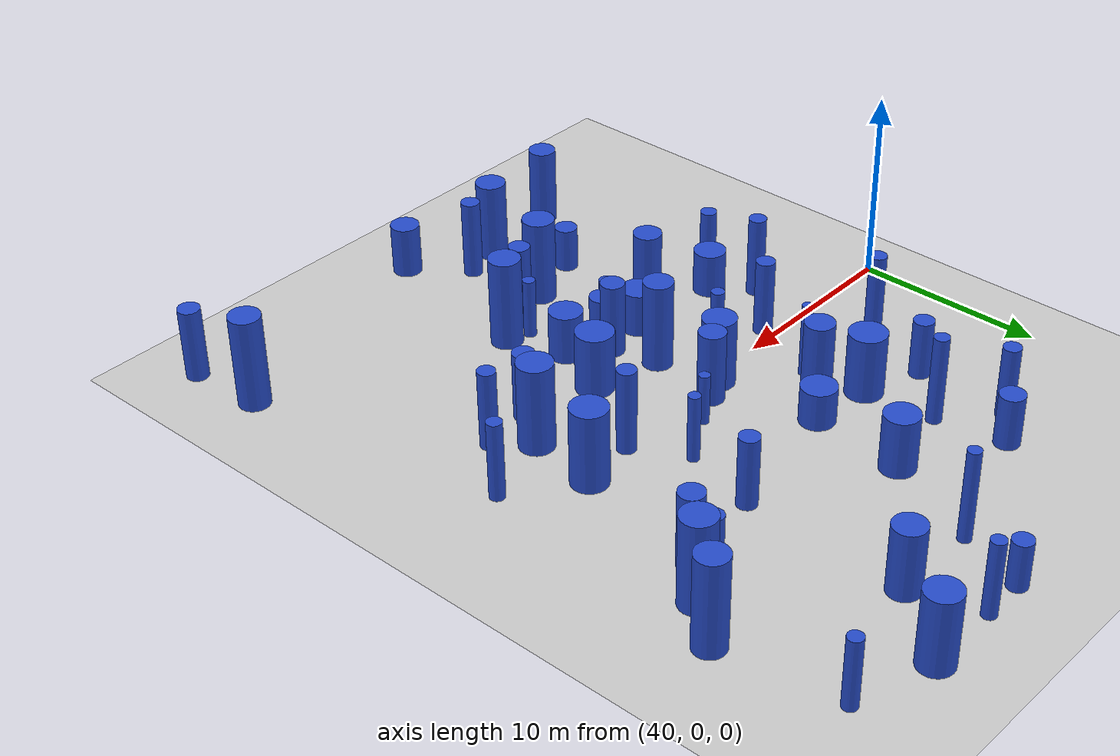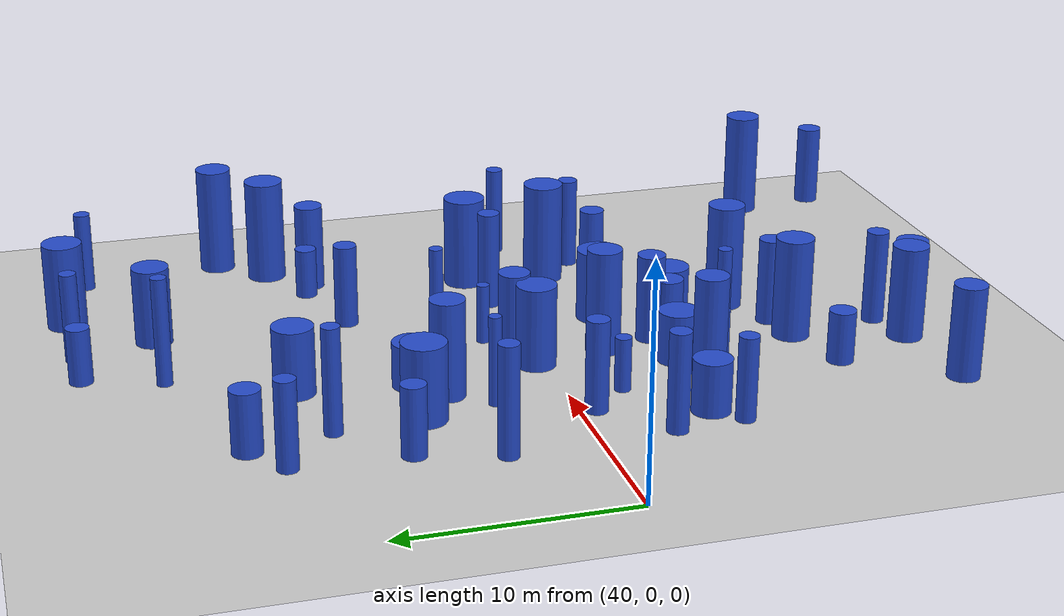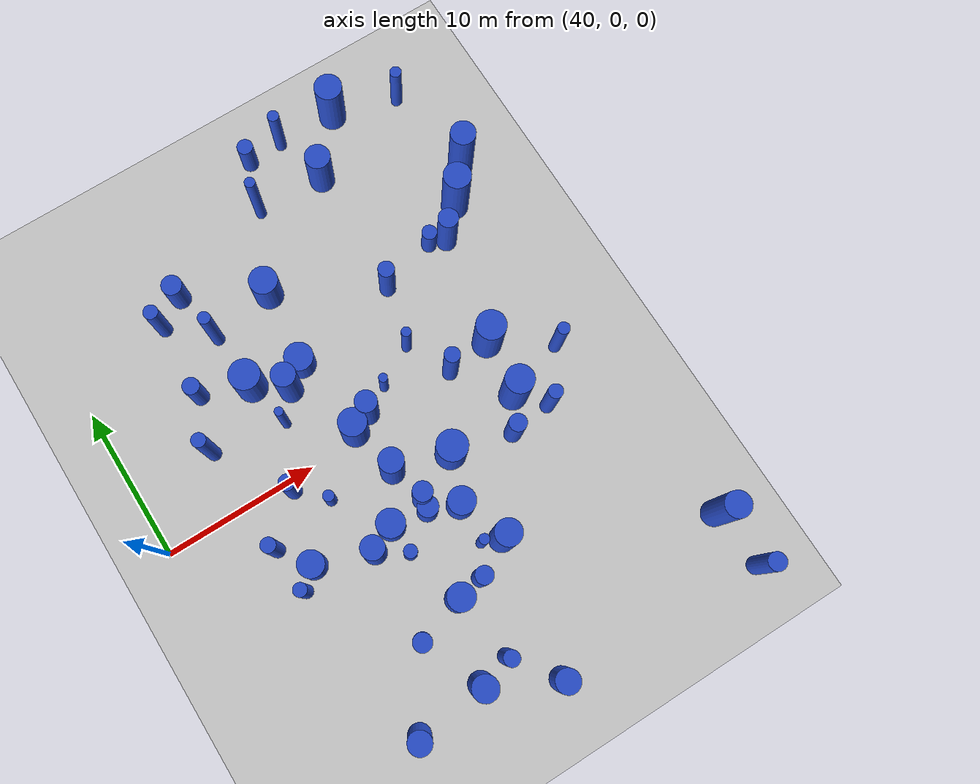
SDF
<sdf version="1.7">
 <world name="default">
  <model name="ground_plane">
   <static>1</static>
   <link name="link">
    <collision name="collision">
     <geometry><plane><normal>0 0 1</normal><size>100 100</size></plane></geometry>
     <surface>
      <contact><collide_bitmask>65535</collide_bitmask></contact>
      <friction><ode><mu>100</mu><mu2>50</mu2></ode></friction>
     </surface>
    </collision>
    <visual name="visual">
     <cast_shadows>0</cast_shadows>
     <geometry><plane><normal>0 0 1</normal><size>100 100</size></plane></geometry>
     <material>
      <script><uri>file://media/materials/scripts/gazebo.material</uri><name>Gazebo/Grey</name></script>
     </material>
    </visual>
   </link>
  </model>
  <model name="1">
   <static>0</static>
   <link name="link">
    <inertial>
     <mass>2</mass>
     <inertia><ixx>3.81588</ixx><ixy>0</ixy><ixz>0</ixz><iyy>3.81588</iyy><iyz>0</iyz><izz>0.158534</izz></inertia>
    </inertial>
    <collision name="collision">
     <geometry><cylinder><length>4.73494</length><radius>0.398164</radius></cylinder></geometry>
     <surface><contact><collide_without_contact>1</collide_without_contact></contact></surface>
    </collision>
    <visual name="visual">
     <geometry><cylinder><length>4.73494</length><radius>0.398164</radius></cylinder></geometry>
     <material>
      <script><uri>file://media/materials/scripts/gazebo.material</uri><name>Gazebo/Blue</name></script>
     </material>
    </visual>
    <gravity>0</gravity>
   </link>
   <pose>49.1407 10.17 2.36747 0 -0 0</pose>
  </model>
  <model name="5">
   <static>0</static>
   <link name="link">
    <inertial>
     <mass>2</mass>
     <inertia><ixx>0.79305</ixx><ixy>0</ixy><ixz>0</ixz><iyy>0.79305</iyy><iyz>0</iyz><izz>0.186767</izz></inertia>
    </inertial>
    <collision name="collision">
     <geometry><cylinder><length>2.0489</length><radius>0.432165</radius></cylinder></geometry>
     <surface><contact><collide_without_contact>1</collide_without_contact></contact></surface>
    </collision>
    <visual name="visual">
     <geometry><cylinder><length>2.0489</length><radius>0.432165</radius></cylinder></geometry>
     <material>
      <script><uri>file://media/materials/scripts/gazebo.material</uri><name>Gazebo/Blue</name></script>
     </material>
    </visual>
    <gravity>0</gravity>
   </link>
   <pose>52.3759 -7.64916 1.02445 0 -0 0</pose>
  </model>
  <model name="9">
   <static>0</static>
   <link name="link">
    <inertial>
     <mass>2</mass>
     <inertia><ixx>2.49906</ixx><ixy>0</ixy><ixz>0</ixz><iyy>2.49906</iyy><iyz>0</iyz><izz>0.95958</izz></inertia>
    </inertial>
    <collision name="collision">
     <geometry><cylinder><length>3.48075</length><radius>0.979581</radius></cylinder></geometry>
     <surface><contact><collide_without_contact>1</collide_without_contact></contact></surface>
    </collision>
    <visual name="visual">
     <geometry><cylinder><length>3.48075</length><radius>0.979581</radius></cylinder></geometry>
     <material>
      <script><uri>file://media/materials/scripts/gazebo.material</uri><name>Gazebo/Blue</name></script>
     </material>
    </visual>
    <gravity>0</gravity>
   </link>
   <pose>49.4222 6.32651 1.74037 0 -0 0</pose>
  </model>
  <model name="10">
   <static>0</static>
   <link name="link">
    <inertial>
     <mass>2</mass>
     <inertia><ixx>2.47867</ixx><ixy>0</ixy><ixz>0</ixz><iyy>2.47867</iyy><iyz>0</iyz><izz>0.684649</izz></inertia>
    </inertial>
    <collision name="collision">
     <geometry><cylinder><length>3.58024</length><radius>0.827435</radius></cylinder></geometry>
     <surface><contact><collide_without_contact>1</collide_without_contact></contact></surface>
    </collision>
    <visual name="visual">
     <geometry><cylinder><length>3.58024</length><radius>0.827435</radius></cylinder></geometry>
     <material>
      <script><uri>file://media/materials/scripts/gazebo.material</uri><name>Gazebo/Blue</name></script>
     </material>
    </visual>
    <gravity>0</gravity>
   </link>
   <pose>60.2377 16.0206 1.79012 0 -0 0</pose>
  </model>
  <model name="16">
   <static>0</static>
   <link name="link">
    <inertial>
     <mass>2</mass>
     <inertia><ixx>1.52106</ixx><ixy>0</ixy><ixz>0</ixz><iyy>1.52106</iyy><iyz>0</iyz><izz>0.42879</izz></inertia>
    </inertial>
    <collision name="collision">
     <geometry><cylinder><length>2.8</length><radius>0.65482</radius></cylinder></geometry>
     <surface><contact><collide_without_contact>1</collide_without_contact></contact></surface>
    </collision>
    <visual name="visual">
     <geometry><cylinder><length>2.8</length><radius>0.65482</radius></cylinder></geometry>
     <material>
      <script><uri>file://media/materials/scripts/gazebo.material</uri><name>Gazebo/Blue</name></script>
     </material>
    </visual>
    <gravity>0</gravity>
   </link>
   <pose>48.4224 13.7686 1.4 0 -0 0</pose>
  </model>
  <model name="20">
   <static>0</static>
   <link name="link">
    <inertial>
     <mass>2</mass>
     <inertia><ixx>2.82224</ixx><ixy>0</ixy><ixz>0</ixz><iyy>2.82224</iyy><iyz>0</iyz><izz>0.140236</izz></inertia>
    </inertial>
    <collision name="collision">
     <geometry><cylinder><length>4.06358</length><radius>0.374481</radius></cylinder></geometry>
     <surface><contact><collide_without_contact>1</collide_without_contact></contact></surface>
    </collision>
    <visual name="visual">
     <geometry><cylinder><length>4.06358</length><radius>0.374481</radius></cylinder></geometry>
     <material>
      <script><uri>file://media/materials/scripts/gazebo.material</uri><name>Gazebo/Blue</name></script>
     </material>
    </visual>
    <gravity>0</gravity>
   </link>
   <pose>59.2068 19.6094 2.03179 0 -0 0</pose>
  </model>
  <model name="21">
   <static>0</static>
   <link name="link">
    <inertial>
     <mass>2</mass>
     <inertia><ixx>3.48031</ixx><ixy>0</ixy><ixz>0</ixz><iyy>3.48031</iyy><iyz>0</iyz><izz>0.247758</izz></inertia>
    </inertial>
    <collision name="collision">
     <geometry><cylinder><length>4.4876</length><radius>0.497753</radius></cylinder></geometry>
     <surface><contact><collide_without_contact>1</collide_without_contact></contact></surface>
    </collision>
    <visual name="visual">
     <geometry><cylinder><length>4.4876</length><radius>0.497753</radius></cylinder></geometry>
     <material>
      <script><uri>file://media/materials/scripts/gazebo.material</uri><name>Gazebo/Blue</name></script>
     </material>
    </visual>
    <gravity>0</gravity>
   </link>
   <pose>60.4035 0.607135 2.2438 0 -0 0</pose>
  </model>
  <model name="23">
   <static>0</static>
   <link name="link">
    <inertial>
     <mass>2</mass>
     <inertia><ixx>3.02897</ixx><ixy>0</ixy><ixz>0</ixz><iyy>3.02897</iyy><iyz>0</iyz><izz>0.799249</izz></inertia>
    </inertial>
    <collision name="collision">
     <geometry><cylinder><length>3.97191</length><radius>0.894007</radius></cylinder></geometry>
     <surface><contact><collide_without_contact>1</collide_without_contact></contact></surface>
    </collision>
    <visual name="visual">
     <geometry><cylinder><length>3.97191</length><radius>0.894007</radius></cylinder></geometry>
     <material>
      <script><uri>file://media/materials/scripts/gazebo.material</uri><name>Gazebo/Blue</name></script>
     </material>
    </visual>
    <gravity>0</gravity>
   </link>
   <pose>63.1573 19.5604 1.98596 0 -0 0</pose>
  </model>
  <model name="29">
   <static>0</static>
   <link name="link">
    <inertial>
     <mass>2</mass>
     <inertia><ixx>2.40213</ixx><ixy>0</ixy><ixz>0</ixz><iyy>2.40213</iyy><iyz>0</iyz><izz>0.316267</izz></inertia>
    </inertial>
    <collision name="collision">
     <geometry><cylinder><length>3.66933</length><radius>0.562376</radius></cylinder></geometry>
     <surface><contact><collide_without_contact>1</collide_without_contact></contact></surface>
    </collision>
    <visual name="visual">
     <geometry><cylinder><length>3.66933</length><radius>0.562376</radius></cylinder></geometry>
     <material>
      <script><uri>file://media/materials/scripts/gazebo.material</uri><name>Gazebo/Blue</name></script>
     </material>
    </visual>
    <gravity>0</gravity>
   </link>
   <pose>61.6124 -4.73536 1.83467 0 -0 0</pose>
  </model>
  <model name="33">
   <static>0</static>
   <link name="link">
    <inertial>
     <mass>2</mass>
     <inertia><ixx>2.44196</ixx><ixy>0</ixy><ixz>0</ixz><iyy>2.44196</iyy><iyz>0</iyz><izz>0.187757</izz></inertia>
    </inertial>
    <collision name="collision">
     <geometry><cylinder><length>3.75347</length><radius>0.43331</radius></cylinder></geometry>
     <surface><contact><collide_without_contact>1</collide_without_contact></contact></surface>
    </collision>
    <visual name="visual">
     <geometry><cylinder><length>3.75347</length><radius>0.43331</radius></cylinder></geometry>
     <material>
      <script><uri>file://media/materials/scripts/gazebo.material</uri><name>Gazebo/Blue</name></script>
     </material>
    </visual>
    <gravity>0</gravity>
   </link>
   <pose>45.8934 -6.28492 1.87673 0 -0 0</pose>
  </model>
  <model name="34">
   <static>0</static>
   <link name="link">
    <inertial>
     <mass>2</mass>
     <inertia><ixx>1.29833</ixx><ixy>0</ixy><ixz>0</ixz><iyy>1.29833</iyy><iyz>0</iyz><izz>0.714199</izz></inertia>
    </inertial>
    <collision name="collision">
     <geometry><cylinder><length>2.37642</length><radius>0.845103</radius></cylinder></geometry>
     <surface><contact><collide_without_contact>1</collide_without_contact></contact></surface>
    </collision>
    <visual name="visual">
     <geometry><cylinder><length>2.37642</length><radius>0.845103</radius></cylinder></geometry>
     <material>
      <script><uri>file://media/materials/scripts/gazebo.material</uri><name>Gazebo/Blue</name></script>
     </material>
    </visual>
    <gravity>0</gravity>
   </link>
   <pose>47.0564 -5.23083 1.18821 0 -0 0</pose>
  </model>
  <model name="48">
   <static>0</static>
   <link name="link">
    <inertial>
     <mass>2</mass>
     <inertia><ixx>3.26153</ixx><ixy>0</ixy><ixz>0</ixz><iyy>3.26153</iyy><iyz>0</iyz><izz>0.520826</izz></inertia>
    </inertial>
    <collision name="collision">
     <geometry><cylinder><length>4.24343</length><radius>0.721682</radius></cylinder></geometry>
     <surface><contact><collide_without_contact>1</collide_without_contact></contact></surface>
    </collision>
    <visual name="visual">
     <geometry><cylinder><length>4.24343</length><radius>0.721682</radius></cylinder></geometry>
     <material>
      <script><uri>file://media/materials/scripts/gazebo.material</uri><name>Gazebo/Blue</name></script>
     </material>
    </visual>
    <gravity>0</gravity>
   </link>
   <pose>47.3023 -16.8121 2.12171 0 -0 0</pose>
  </model>
  <model name="51">
   <static>0</static>
   <link name="link">
    <inertial>
     <mass>2</mass>
     <inertia><ixx>2.86155</ixx><ixy>0</ixy><ixz>0</ixz><iyy>2.86155</iyy><iyz>0</iyz><izz>0.388059</izz></inertia>
    </inertial>
    <collision name="collision">
     <geometry><cylinder><length>4.00064</length><radius>0.622944</radius></cylinder></geometry>
     <surface><contact><collide_without_contact>1</collide_without_contact></contact></surface>
    </collision>
    <visual name="visual">
     <geometry><cylinder><length>4.00064</length><radius>0.622944</radius></cylinder></geometry>
     <material>
      <script><uri>file://media/materials/scripts/gazebo.material</uri><name>Gazebo/Blue</name></script>
     </material>
    </visual>
    <gravity>0</gravity>
   </link>
   <pose>54.7011 -5.24288 2.00032 0 -0 0</pose>
  </model>
  <model name="66">
   <static>0</static>
   <link name="link">
    <inertial>
     <mass>2</mass>
     <inertia>
      <ixx>2.20663</ixx>
      <ixy>0</ixy>
      <ixz>0</ixz>
      <iyy>2.20663</iyy>
      <iyz>0</iyz>
      <izz>0.0996871</izz>
     </inertia>
    </inertial>
    <collision name="collision">
     <geometry><cylinder><length>3.59732</length><radius>0.315733</radius></cylinder></geometry>
     <surface><contact><collide_without_contact>1</collide_without_contact></contact></surface>
    </collision>
    <visual name="visual">
     <geometry><cylinder><length>3.59732</length><radius>0.315733</radius></cylinder></geometry>
     <material>
      <script><uri>file://media/materials/scripts/gazebo.material</uri><name>Gazebo/Blue</name></script>
     </material>
    </visual>
    <gravity>0</gravity>
   </link>
   <pose>58.9646 3.44472 1.79866 0 -0 0</pose>
  </model>
  <model name="101">
   <static>0</static>
   <link name="link">
    <inertial>
     <mass>2</mass>
     <inertia><ixx>2.52382</ixx><ixy>0</ixy><ixz>0</ixz><iyy>2.52382</iyy><iyz>0</iyz><izz>0.271897</izz></inertia>
    </inertial>
    <collision name="collision">
     <geometry><cylinder><length>3.78514</length><radius>0.521438</radius></cylinder></geometry>
     <surface><contact><collide_without_contact>1</collide_without_contact></contact></surface>
    </collision>
    <visual name="visual">
     <geometry><cylinder><length>3.78514</length><radius>0.521438</radius></cylinder></geometry>
     <material>
      <script><uri>file://media/materials/scripts/gazebo.material</uri><name>Gazebo/Blue</name></script>
     </material>
    </visual>
    <gravity>0</gravity>
   </link>
   <pose>59.9851 7.38569 1.89257 0 -0 0</pose>
  </model>
  <model name="103">
   <static>0</static>
   <link name="link">
    <inertial>
     <mass>2</mass>
     <inertia><ixx>2.72213</ixx><ixy>0</ixy><ixz>0</ixz><iyy>2.72213</iyy><iyz>0</iyz><izz>0.486014</izz></inertia>
    </inertial>
    <collision name="collision">
     <geometry><cylinder><length>3.85678</length><radius>0.697147</radius></cylinder></geometry>
     <surface><contact><collide_without_contact>1</collide_without_contact></contact></surface>
    </collision>
    <visual name="visual">
     <geometry><cylinder><length>3.85678</length><radius>0.697147</radius></cylinder></geometry>
     <material>
      <script><uri>file://media/materials/scripts/gazebo.material</uri><name>Gazebo/Blue</name></script>
     </material>
    </visual>
    <gravity>0</gravity>
   </link>
   <pose>54.6827 1.02906 1.92839 0 -0 0</pose>
  </model>
  <model name="106">
   <static>0</static>
   <link name="link">
    <inertial>
     <mass>2</mass>
     <inertia><ixx>1.98531</ixx><ixy>0</ixy><ixz>0</ixz><iyy>1.98531</iyy><iyz>0</iyz><izz>0.825751</izz></inertia>
    </inertial>
    <collision name="collision">
     <geometry><cylinder><length>3.07158</length><radius>0.908708</radius></cylinder></geometry>
     <surface><contact><collide_without_contact>1</collide_without_contact></contact></surface>
    </collision>
    <visual name="visual">
     <geometry><cylinder><length>3.07158</length><radius>0.908708</radius></cylinder></geometry>
     <material>
      <script><uri>file://media/materials/scripts/gazebo.material</uri><name>Gazebo/Blue</name></script>
     </material>
    </visual>
    <gravity>0</gravity>
   </link>
   <pose>53.3418 10.9826 1.53579 0 -0 0</pose>
  </model>
  <model name="107">
   <static>0</static>
   <link name="link">
    <inertial>
     <mass>2</mass>
     <inertia><ixx>2.6751</ixx><ixy>0</ixy><ixz>0</ixz><iyy>2.6751</iyy><iyz>0</iyz><izz>0.0768651</izz></inertia>
    </inertial>
    <collision name="collision">
     <geometry><cylinder><length>3.97744</length><radius>0.277246</radius></cylinder></geometry>
     <surface><contact><collide_without_contact>1</collide_without_contact></contact></surface>
    </collision>
    <visual name="visual">
     <geometry><cylinder><length>3.97744</length><radius>0.277246</radius></cylinder></geometry>
     <material>
      <script><uri>file://media/materials/scripts/gazebo.material</uri><name>Gazebo/Blue</name></script>
     </material>
    </visual>
    <gravity>0</gravity>
   </link>
   <pose>50.0432 3.1722 1.98872 0 -0 0</pose>
  </model>
  <model name="113">
   <static>0</static>
   <link name="link">
    <inertial>
     <mass>2</mass>
     <inertia><ixx>1.78792</ixx><ixy>0</ixy><ixz>0</ixz><iyy>1.78792</iyy><iyz>0</iyz><izz>0.287967</izz></inertia>
    </inertial>
    <collision name="collision">
     <geometry><cylinder><length>3.14064</length><radius>0.536625</radius></cylinder></geometry>
     <surface><contact><collide_without_contact>1</collide_without_contact></contact></surface>
    </collision>
    <visual name="visual">
     <geometry><cylinder><length>3.14064</length><radius>0.536625</radius></cylinder></geometry>
     <material>
      <script><uri>file://media/materials/scripts/gazebo.material</uri><name>Gazebo/Blue</name></script>
     </material>
    </visual>
    <gravity>0</gravity>
   </link>
   <pose>46.3667 7.48672 1.57032 0 -0 0</pose>
  </model>
  <model name="127">
   <static>0</static>
   <link name="link">
    <inertial>
     <mass>2</mass>
     <inertia><ixx>3.41432</ixx><ixy>0</ixy><ixz>0</ixz><iyy>3.41432</iyy><iyz>0</iyz><izz>0.901291</izz></inertia>
    </inertial>
    <collision name="collision">
     <geometry><cylinder><length>4.21688</length><radius>0.949363</radius></cylinder></geometry>
     <surface><contact><collide_without_contact>1</collide_without_contact></contact></surface>
    </collision>
    <visual name="visual">
     <geometry><cylinder><length>4.21688</length><radius>0.949363</radius></cylinder></geometry>
     <material>
      <script><uri>file://media/materials/scripts/gazebo.material</uri><name>Gazebo/Blue</name></script>
     </material>
    </visual>
    <gravity>0</gravity>
   </link>
   <pose>63.3918 0.9807 2.10844 0 -0 0</pose>
  </model>
  <model name="186">
   <static>0</static>
   <link name="link">
    <inertial>
     <mass>2</mass>
     <inertia><ixx>2.93958</ixx><ixy>0</ixy><ixz>0</ixz><iyy>2.93958</iyy><iyz>0</iyz><izz>0.249669</izz></inertia>
    </inertial>
    <collision name="collision">
     <geometry><cylinder><length>4.10956</length><radius>0.499669</radius></cylinder></geometry>
     <surface><contact><collide_without_contact>1</collide_without_contact></contact></surface>
    </collision>
    <visual name="visual">
     <geometry><cylinder><length>4.10956</length><radius>0.499669</radius></cylinder></geometry>
     <material>
      <script><uri>file://media/materials/scripts/gazebo.material</uri><name>Gazebo/Blue</name></script>
     </material>
    </visual>
    <gravity>0</gravity>
   </link>
   <pose>48.3288 -0.692841 2.05478 0 -0 0</pose>
  </model>
  <model name="187">
   <static>0</static>
   <link name="link">
    <inertial>
     <mass>2</mass>
     <inertia><ixx>1.57366</ixx><ixy>0</ixy><ixz>0</ixz><iyy>1.57366</iyy><iyz>0</iyz><izz>0.581682</izz></inertia>
    </inertial>
    <collision name="collision">
     <geometry><cylinder><length>2.77433</length><radius>0.76268</radius></cylinder></geometry>
     <surface><contact><collide_without_contact>1</collide_without_contact></contact></surface>
    </collision>
    <visual name="visual">
     <geometry><cylinder><length>2.77433</length><radius>0.76268</radius></cylinder></geometry>
     <material>
      <script><uri>file://media/materials/scripts/gazebo.material</uri><name>Gazebo/Blue</name></script>
     </material>
    </visual>
    <gravity>0</gravity>
   </link>
   <pose>56.0611 -18.544 1.38717 0 -0 0</pose>
  </model>
  <model name="202">
   <static>0</static>
   <link name="link">
    <inertial>
     <mass>2</mass>
     <inertia><ixx>3.10138</ixx><ixy>0</ixy><ixz>0</ixz><iyy>3.10138</iyy><iyz>0</iyz><izz>0.209682</izz></inertia>
    </inertial>
    <collision name="collision">
     <geometry><cylinder><length>4.24019</length><radius>0.45791</radius></cylinder></geometry>
     <surface><contact><collide_without_contact>1</collide_without_contact></contact></surface>
    </collision>
    <visual name="visual">
     <geometry><cylinder><length>4.24019</length><radius>0.45791</radius></cylinder></geometry>
     <material>
      <script><uri>file://media/materials/scripts/gazebo.material</uri><name>Gazebo/Blue</name></script>
     </material>
    </visual>
    <gravity>0</gravity>
   </link>
   <pose>64.3942 -4.40294 2.1201 0 -0 0</pose>
  </model>
  <model name="208">
   <static>0</static>
   <link name="link">
    <inertial>
     <mass>2</mass>
     <inertia><ixx>2.88239</ixx><ixy>0</ixy><ixz>0</ixz><iyy>2.88239</iyy><iyz>0</iyz><izz>0.418174</izz></inertia>
    </inertial>
    <collision name="collision">
     <geometry><cylinder><length>4.00498</length><radius>0.646664</radius></cylinder></geometry>
     <surface><contact><collide_without_contact>1</collide_without_contact></contact></surface>
    </collision>
    <visual name="visual">
     <geometry><cylinder><length>4.00498</length><radius>0.646664</radius></cylinder></geometry>
     <material>
      <script><uri>file://media/materials/scripts/gazebo.material</uri><name>Gazebo/Blue</name></script>
     </material>
    </visual>
    <gravity>0</gravity>
   </link>
   <pose>64.89 8.11091 2.00249 0 -0 0</pose>
  </model>
  <model name="212">
   <static>0</static>
   <link name="link">
    <inertial>
     <mass>2</mass>
     <inertia><ixx>1.12089</ixx><ixy>0</ixy><ixz>0</ixz><iyy>1.12089</iyy><iyz>0</iyz><izz>0.355767</izz></inertia>
    </inertial>
    <collision name="collision">
     <geometry><cylinder><length>2.37867</length><radius>0.596462</radius></cylinder></geometry>
     <surface><contact><collide_without_contact>1</collide_without_contact></contact></surface>
    </collision>
    <visual name="visual">
     <geometry><cylinder><length>2.37867</length><radius>0.596462</radius></cylinder></geometry>
     <material>
      <script><uri>file://media/materials/scripts/gazebo.material</uri><name>Gazebo/Blue</name></script>
     </material>
    </visual>
    <gravity>0</gravity>
   </link>
   <pose>50.2225 -12.4234 1.18933 0 -0 0</pose>
  </model>
  <model name="223">
   <static>0</static>
   <link name="link">
    <inertial>
     <mass>2</mass>
     <inertia><ixx>1.03772</ixx><ixy>0</ixy><ixz>0</ixz><iyy>1.03772</iyy><iyz>0</iyz><izz>0.128133</izz></inertia>
    </inertial>
    <collision name="collision">
     <geometry><cylinder><length>2.417</length><radius>0.357956</radius></cylinder></geometry>
     <surface><contact><collide_without_contact>1</collide_without_contact></contact></surface>
    </collision>
    <visual name="visual">
     <geometry><cylinder><length>2.417</length><radius>0.357956</radius></cylinder></geometry>
     <material>
      <script><uri>file://media/materials/scripts/gazebo.material</uri><name>Gazebo/Blue</name></script>
     </material>
    </visual>
    <gravity>0</gravity>
   </link>
   <pose>49.9669 -2.36919 1.2085 0 -0 0</pose>
  </model>
  <model name="243">
   <static>0</static>
   <link name="link">
    <inertial>
     <mass>2</mass>
     <inertia><ixx>1.10068</ixx><ixy>0</ixy><ixz>0</ixz><iyy>1.10068</iyy><iyz>0</iyz><izz>0.856696</izz></inertia>
    </inertial>
    <collision name="collision">
     <geometry><cylinder><length>2.00848</length><radius>0.925579</radius></cylinder></geometry>
     <surface><contact><collide_without_contact>1</collide_without_contact></contact></surface>
    </collision>
    <visual name="visual">
     <geometry><cylinder><length>2.00848</length><radius>0.925579</radius></cylinder></geometry>
     <material>
      <script><uri>file://media/materials/scripts/gazebo.material</uri><name>Gazebo/Blue</name></script>
     </material>
    </visual>
    <gravity>0</gravity>
   </link>
   <pose>52.7755 5.98765 1.00424 0 -0 0</pose>
  </model>
  <model name="245">
   <static>0</static>
   <link name="link">
    <inertial>
     <mass>2</mass>
     <inertia><ixx>4.31321</ixx><ixy>0</ixy><ixz>0</ixz><iyy>4.31321</iyy><iyz>0</iyz><izz>0.691048</izz></inertia>
    </inertial>
    <collision name="collision">
     <geometry><cylinder><length>4.87915</length><radius>0.831293</radius></cylinder></geometry>
     <surface><contact><collide_without_contact>1</collide_without_contact></contact></surface>
    </collision>
    <visual name="visual">
     <geometry><cylinder><length>4.87915</length><radius>0.831293</radius></cylinder></geometry>
     <material>
      <script><uri>file://media/materials/scripts/gazebo.material</uri><name>Gazebo/Blue</name></script>
     </material>
    </visual>
    <gravity>0</gravity>
   </link>
   <pose>57.5139 -9.83321 2.43957 0 -0 0</pose>
  </model>
  <model name="254">
   <static>0</static>
   <link name="link">
    <inertial>
     <mass>2</mass>
     <inertia>
      <ixx>1.57214</ixx>
      <ixy>0</ixy>
      <ixz>0</ixz>
      <iyy>1.57214</iyy>
      <iyz>0</iyz>
      <izz>0.0828574</izz>
     </inertia>
    </inertial>
    <collision name="collision">
     <geometry><cylinder><length>3.03056</length><radius>0.28785</radius></cylinder></geometry>
     <surface><contact><collide_without_contact>1</collide_without_contact></contact></surface>
    </collision>
    <visual name="visual">
     <geometry><cylinder><length>3.03056</length><radius>0.28785</radius></cylinder></geometry>
     <material>
      <script><uri>file://media/materials/scripts/gazebo.material</uri><name>Gazebo/Blue</name></script>
     </material>
    </visual>
    <gravity>0</gravity>
   </link>
   <pose>52.8419 -11.5112 1.51528 0 -0 0</pose>
  </model>
  <model name="256">
   <static>0</static>
   <link name="link">
    <inertial>
     <mass>2</mass>
     <inertia><ixx>1.21052</ixx><ixy>0</ixy><ixz>0</ixz><iyy>1.21052</iyy><iyz>0</iyz><izz>0.269813</izz></inertia>
    </inertial>
    <collision name="collision">
     <geometry><cylinder><length>2.54041</length><radius>0.519435</radius></cylinder></geometry>
     <surface><contact><collide_without_contact>1</collide_without_contact></contact></surface>
    </collision>
    <visual name="visual">
     <geometry><cylinder><length>2.54041</length><radius>0.519435</radius></cylinder></geometry>
     <material>
      <script><uri>file://media/materials/scripts/gazebo.material</uri><name>Gazebo/Blue</name></script>
     </material>
    </visual>
    <gravity>0</gravity>
   </link>
   <pose>56.8406 19.5091 1.2702 0 -0 0</pose>
  </model>
  <model name="259">
   <static>0</static>
   <link name="link">
    <inertial>
     <mass>2</mass>
     <inertia><ixx>1.30967</ixx><ixy>0</ixy><ixz>0</ixz><iyy>1.30967</iyy><iyz>0</iyz><izz>0.813274</izz></inertia>
    </inertial>
    <collision name="collision">
     <geometry><cylinder><length>2.3277</length><radius>0.901817</radius></cylinder></geometry>
     <surface><contact><collide_without_contact>1</collide_without_contact></contact></surface>
    </collision>
    <visual name="visual">
     <geometry><cylinder><length>2.3277</length><radius>0.901817</radius></cylinder></geometry>
     <material>
      <script><uri>file://media/materials/scripts/gazebo.material</uri><name>Gazebo/Blue</name></script>
     </material>
    </visual>
    <gravity>0</gravity>
   </link>
   <pose>52.2343 -5.6608 1.16385 0 -0 0</pose>
  </model>
  <model name="269">
   <static>0</static>
   <link name="link">
    <inertial>
     <mass>2</mass>
     <inertia><ixx>4.09694</ixx><ixy>0</ixy><ixz>0</ixz><iyy>4.09694</iyy><iyz>0</iyz><izz>0.822111</izz></inertia>
    </inertial>
    <collision name="collision">
     <geometry><cylinder><length>4.70269</length><radius>0.906703</radius></cylinder></geometry>
     <surface><contact><collide_without_contact>1</collide_without_contact></contact></surface>
    </collision>
    <visual name="visual">
     <geometry><cylinder><length>4.70269</length><radius>0.906703</radius></cylinder></geometry>
     <material>
      <script><uri>file://media/materials/scripts/gazebo.material</uri><name>Gazebo/Blue</name></script>
     </material>
    </visual>
    <gravity>0</gravity>
   </link>
   <pose>62.9264 -2.74053 2.35134 0 -0 0</pose>
  </model>
  <model name="275">
   <static>0</static>
   <link name="link">
    <inertial>
     <mass>2</mass>
     <inertia><ixx>2.71759</ixx><ixy>0</ixy><ixz>0</ixz><iyy>2.71759</iyy><iyz>0</iyz><izz>0.330228</izz></inertia>
    </inertial>
    <collision name="collision">
     <geometry><cylinder><length>3.91342</length><radius>0.574655</radius></cylinder></geometry>
     <surface><contact><collide_without_contact>1</collide_without_contact></contact></surface>
    </collision>
    <visual name="visual">
     <geometry><cylinder><length>3.91342</length><radius>0.574655</radius></cylinder></geometry>
     <material>
      <script><uri>file://media/materials/scripts/gazebo.material</uri><name>Gazebo/Blue</name></script>
     </material>
    </visual>
    <gravity>0</gravity>
   </link>
   <pose>69.6437 -19.2288 1.95671 0 -0 0</pose>
  </model>
  <model name="277">
   <static>0</static>
   <link name="link">
    <inertial>
     <mass>2</mass>
     <inertia><ixx>3.34082</ixx><ixy>0</ixy><ixz>0</ixz><iyy>3.34082</iyy><iyz>0</iyz><izz>0.219298</izz></inertia>
    </inertial>
    <collision name="collision">
     <geometry><cylinder><length>4.40307</length><radius>0.468293</radius></cylinder></geometry>
     <surface><contact><collide_without_contact>1</collide_without_contact></contact></surface>
    </collision>
    <visual name="visual">
     <geometry><cylinder><length>4.40307</length><radius>0.468293</radius></cylinder></geometry>
     <material>
      <script><uri>file://media/materials/scripts/gazebo.material</uri><name>Gazebo/Blue</name></script>
     </material>
    </visual>
    <gravity>0</gravity>
   </link>
   <pose>45.6731 -3.25743 2.20154 0 -0 0</pose>
  </model>
  <model name="281">
   <static>0</static>
   <link name="link">
    <inertial>
     <mass>2</mass>
     <inertia><ixx>1.55093</ixx><ixy>0</ixy><ixz>0</ixz><iyy>1.55093</iyy><iyz>0</iyz><izz>0.436646</izz></inertia>
    </inertial>
    <collision name="collision">
     <geometry><cylinder><length>2.82765</length><radius>0.660792</radius></cylinder></geometry>
     <surface><contact><collide_without_contact>1</collide_without_contact></contact></surface>
    </collision>
    <visual name="visual">
     <geometry><cylinder><length>2.82765</length><radius>0.660792</radius></cylinder></geometry>
     <material>
      <script><uri>file://media/materials/scripts/gazebo.material</uri><name>Gazebo/Blue</name></script>
     </material>
    </visual>
    <gravity>0</gravity>
   </link>
   <pose>54.5759 -6.03183 1.41383 0 -0 0</pose>
  </model>
  <model name="340">
   <static>0</static>
   <link name="link">
    <inertial>
     <mass>2</mass>
     <inertia><ixx>2.64201</ixx><ixy>0</ixy><ixz>0</ixz><iyy>2.64201</iyy><iyz>0</iyz><izz>0.212555</izz></inertia>
    </inertial>
    <collision name="collision">
     <geometry><cylinder><length>3.90057</length><radius>0.461037</radius></cylinder></geometry>
     <surface><contact><collide_without_contact>1</collide_without_contact></contact></surface>
    </collision>
    <visual name="visual">
     <geometry><cylinder><length>3.90057</length><radius>0.461037</radius></cylinder></geometry>
     <material>
      <script><uri>file://media/materials/scripts/gazebo.material</uri><name>Gazebo/Blue</name></script>
     </material>
    </visual>
    <gravity>0</gravity>
   </link>
   <pose>46.5815 12.4823 1.95028 0 -0 0</pose>
  </model>
  <model name="369">
   <static>0</static>
   <link name="link">
    <inertial>
     <mass>2</mass>
     <inertia><ixx>3.18684</ixx><ixy>0</ixy><ixz>0</ixz><iyy>3.18684</iyy><iyz>0</iyz><izz>0.244602</izz></inertia>
    </inertial>
    <collision name="collision">
     <geometry><cylinder><length>4.28804</length><radius>0.494573</radius></cylinder></geometry>
     <surface><contact><collide_without_contact>1</collide_without_contact></contact></surface>
    </collision>
    <visual name="visual">
     <geometry><cylinder><length>4.28804</length><radius>0.494573</radius></cylinder></geometry>
     <material>
      <script><uri>file://media/materials/scripts/gazebo.material</uri><name>Gazebo/Blue</name></script>
     </material>
    </visual>
    <gravity>0</gravity>
   </link>
   <pose>53.9658 -15.7032 2.14402 0 -0 0</pose>
  </model>
  <model name="371">
   <static>0</static>
   <link name="link">
    <inertial>
     <mass>2</mass>
     <inertia><ixx>4.49671</ixx><ixy>0</ixy><ixz>0</ixz><iyy>4.49671</iyy><iyz>0</iyz><izz>0.667664</izz></inertia>
    </inertial>
    <collision name="collision">
     <geometry><cylinder><length>4.99772</length><radius>0.817107</radius></cylinder></geometry>
     <surface><contact><collide_without_contact>1</collide_without_contact></contact></surface>
    </collision>
    <visual name="visual">
     <geometry><cylinder><length>4.99772</length><radius>0.817107</radius></cylinder></geometry>
     <material>
      <script><uri>file://media/materials/scripts/gazebo.material</uri><name>Gazebo/Blue</name></script>
     </material>
    </visual>
    <gravity>0</gravity>
   </link>
   <pose>69.3116 -15.3483 2.49886 0 -0 0</pose>
  </model>
  <model name="376">
   <static>0</static>
   <link name="link">
    <inertial>
     <mass>2</mass>
     <inertia><ixx>4.08471</ixx><ixy>0</ixy><ixz>0</ixz><iyy>4.08471</iyy><iyz>0</iyz><izz>0.201075</izz></inertia>
    </inertial>
    <collision name="collision">
     <geometry><cylinder><length>4.88928</length><radius>0.448414</radius></cylinder></geometry>
     <surface><contact><collide_without_contact>1</collide_without_contact></contact></surface>
    </collision>
    <visual name="visual">
     <geometry><cylinder><length>4.88928</length><radius>0.448414</radius></cylinder></geometry>
     <material>
      <script><uri>file://media/materials/scripts/gazebo.material</uri><name>Gazebo/Blue</name></script>
     </material>
    </visual>
    <gravity>0</gravity>
   </link>
   <pose>45.3194 3.92365 2.44464 0 -0 0</pose>
  </model>
  <model name="378">
   <static>0</static>
   <link name="link">
    <inertial>
     <mass>2</mass>
     <inertia><ixx>3.49406</ixx><ixy>0</ixy><ixz>0</ixz><iyy>3.49406</iyy><iyz>0</iyz><izz>0.589634</izz></inertia>
    </inertial>
    <collision name="collision">
     <geometry><cylinder><length>4.38126</length><radius>0.767876</radius></cylinder></geometry>
     <surface><contact><collide_without_contact>1</collide_without_contact></contact></surface>
    </collision>
    <visual name="visual">
     <geometry><cylinder><length>4.38126</length><radius>0.767876</radius></cylinder></geometry>
     <material>
      <script><uri>file://media/materials/scripts/gazebo.material</uri><name>Gazebo/Blue</name></script>
     </material>
    </visual>
    <gravity>0</gravity>
   </link>
   <pose>51.3695 4.85079 2.19063 0 -0 0</pose>
  </model>
  <model name="391">
   <static>0</static>
   <link name="link">
    <inertial>
     <mass>2</mass>
     <inertia><ixx>2.72122</ixx><ixy>0</ixy><ixz>0</ixz><iyy>2.72122</iyy><iyz>0</iyz><izz>0.779548</izz></inertia>
    </inertial>
    <collision name="collision">
     <geometry><cylinder><length>3.74015</length><radius>0.88292</radius></cylinder></geometry>
     <surface><contact><collide_without_contact>1</collide_without_contact></contact></surface>
    </collision>
    <visual name="visual">
     <geometry><cylinder><length>3.74015</length><radius>0.88292</radius></cylinder></geometry>
     <material>
      <script><uri>file://media/materials/scripts/gazebo.material</uri><name>Gazebo/Blue</name></script>
     </material>
    </visual>
    <gravity>0</gravity>
   </link>
   <pose>53.3764 0.413029 1.87007 0 -0 0</pose>
  </model>
  <model name="393">
   <static>0</static>
   <link name="link">
    <inertial>
     <mass>2</mass>
     <inertia><ixx>2.7816</ixx><ixy>0</ixy><ixz>0</ixz><iyy>2.7816</iyy><iyz>0</iyz><izz>0.314071</izz></inertia>
    </inertial>
    <collision name="collision">
     <geometry><cylinder><length>3.9683</length><radius>0.560421</radius></cylinder></geometry>
     <surface><contact><collide_without_contact>1</collide_without_contact></contact></surface>
    </collision>
    <visual name="visual">
     <geometry><cylinder><length>3.9683</length><radius>0.560421</radius></cylinder></geometry>
     <material>
      <script><uri>file://media/materials/scripts/gazebo.material</uri><name>Gazebo/Blue</name></script>
     </material>
    </visual>
    <gravity>0</gravity>
   </link>
   <pose>55.1545 -11.1028 1.98415 0 -0 0</pose>
  </model>
  <model name="407">
   <static>0</static>
   <link name="link">
    <inertial>
     <mass>2</mass>
     <inertia><ixx>2.28469</ixx><ixy>0</ixy><ixz>0</ixz><iyy>2.28469</iyy><iyz>0</iyz><izz>0.976443</izz></inertia>
    </inertial>
    <collision name="collision">
     <geometry><cylinder><length>3.28311</length><radius>0.988151</radius></cylinder></geometry>
     <surface><contact><collide_without_contact>1</collide_without_contact></contact></surface>
    </collision>
    <visual name="visual">
     <geometry><cylinder><length>3.28311</length><radius>0.988151</radius></cylinder></geometry>
     <material>
      <script><uri>file://media/materials/scripts/gazebo.material</uri><name>Gazebo/Blue</name></script>
     </material>
    </visual>
    <gravity>0</gravity>
   </link>
   <pose>57.6626 -3.79133 1.64155 0 -0 0</pose>
  </model>
  <model name="413">
   <static>0</static>
   <link name="link">
    <inertial>
     <mass>2</mass>
     <inertia><ixx>4.07373</ixx><ixy>0</ixy><ixz>0</ixz><iyy>4.07373</iyy><iyz>0</iyz><izz>0.599863</izz></inertia>
    </inertial>
    <collision name="collision">
     <geometry><cylinder><length>4.75844</length><radius>0.774508</radius></cylinder></geometry>
     <surface><contact><collide_without_contact>1</collide_without_contact></contact></surface>
    </collision>
    <visual name="visual">
     <geometry><cylinder><length>4.75844</length><radius>0.774508</radius></cylinder></geometry>
     <material>
      <script><uri>file://media/materials/scripts/gazebo.material</uri><name>Gazebo/Blue</name></script>
     </material>
    </visual>
    <gravity>0</gravity>
   </link>
   <pose>54.0588 -2.85487 2.37922 0 -0 0</pose>
  </model>
  <model name="415">
   <static>0</static>
   <link name="link">
    <inertial>
     <mass>2</mass>
     <inertia><ixx>3.6422</ixx><ixy>0</ixy><ixz>0</ixz><iyy>3.6422</iyy><iyz>0</iyz><izz>0.544372</izz></inertia>
    </inertial>
    <collision name="collision">
     <geometry><cylinder><length>4.49667</length><radius>0.737816</radius></cylinder></geometry>
     <surface><contact><collide_without_contact>1</collide_without_contact></contact></surface>
    </collision>
    <visual name="visual">
     <geometry><cylinder><length>4.49667</length><radius>0.737816</radius></cylinder></geometry>
     <material>
      <script><uri>file://media/materials/scripts/gazebo.material</uri><name>Gazebo/Blue</name></script>
     </material>
    </visual>
    <gravity>0</gravity>
   </link>
   <pose>50.5865 -6.4911 2.24834 0 -0 0</pose>
  </model>
  <model name="416">
   <static>0</static>
   <link name="link">
    <inertial>
     <mass>2</mass>
     <inertia><ixx>1.79273</ixx><ixy>0</ixy><ixz>0</ixz><iyy>1.79273</iyy><iyz>0</iyz><izz>0.107747</izz></inertia>
    </inertial>
    <collision name="collision">
     <geometry><cylinder><length>3.23003</length><radius>0.328248</radius></cylinder></geometry>
     <surface><contact><collide_without_contact>1</collide_without_contact></contact></surface>
    </collision>
    <visual name="visual">
     <geometry><cylinder><length>3.23003</length><radius>0.328248</radius></cylinder></geometry>
     <material>
      <script><uri>file://media/materials/scripts/gazebo.material</uri><name>Gazebo/Blue</name></script>
     </material>
    </visual>
    <gravity>0</gravity>
   </link>
   <pose>56.3158 -9.36862 1.61502 0 -0 0</pose>
  </model>
  <model name="419">
   <static>0</static>
   <link name="link">
    <inertial>
     <mass>2</mass>
     <inertia><ixx>1.00438</ixx><ixy>0</ixy><ixz>0</ixz><iyy>1.00438</iyy><iyz>0</iyz><izz>0.238772</izz></inertia>
    </inertial>
    <collision name="collision">
     <geometry><cylinder><length>2.30434</length><radius>0.488643</radius></cylinder></geometry>
     <surface><contact><collide_without_contact>1</collide_without_contact></contact></surface>
    </collision>
    <visual name="visual">
     <geometry><cylinder><length>2.30434</length><radius>0.488643</radius></cylinder></geometry>
     <material>
      <script><uri>file://media/materials/scripts/gazebo.material</uri><name>Gazebo/Blue</name></script>
     </material>
    </visual>
    <gravity>0</gravity>
   </link>
   <pose>63.7913 8.49877 1.15217 0 -0 0</pose>
  </model>
  <model name="424">
   <static>0</static>
   <link name="link">
    <inertial>
     <mass>2</mass>
     <inertia><ixx>4.48114</ixx><ixy>0</ixy><ixz>0</ixz><iyy>4.48114</iyy><iyz>0</iyz><izz>0.658391</izz></inertia>
    </inertial>
    <collision name="collision">
     <geometry><cylinder><length>4.99116</length><radius>0.811413</radius></cylinder></geometry>
     <surface><contact><collide_without_contact>1</collide_without_contact></contact></surface>
    </collision>
    <visual name="visual">
     <geometry><cylinder><length>4.99116</length><radius>0.811413</radius></cylinder></geometry>
     <material>
      <script><uri>file://media/materials/scripts/gazebo.material</uri><name>Gazebo/Blue</name></script>
     </material>
    </visual>
    <gravity>0</gravity>
   </link>
   <pose>68.3782 11.9957 2.49558 0 -0 0</pose>
  </model>
  <model name="437">
   <static>0</static>
   <link name="link">
    <inertial>
     <mass>2</mass>
     <inertia><ixx>4.20422</ixx><ixy>0</ixy><ixz>0</ixz><iyy>4.20422</iyy><iyz>0</iyz><izz>0.783152</izz></inertia>
    </inertial>
    <collision name="collision">
     <geometry><cylinder><length>4.78287</length><radius>0.884959</radius></cylinder></geometry>
     <surface><contact><collide_without_contact>1</collide_without_contact></contact></surface>
    </collision>
    <visual name="visual">
     <geometry><cylinder><length>4.78287</length><radius>0.884959</radius></cylinder></geometry>
     <material>
      <script><uri>file://media/materials/scripts/gazebo.material</uri><name>Gazebo/Blue</name></script>
     </material>
    </visual>
    <gravity>0</gravity>
   </link>
   <pose>66.6373 9.89638 2.39143 0 -0 0</pose>
  </model>
  <model name="438">
   <static>0</static>
   <link name="link">
    <inertial>
     <mass>2</mass>
     <inertia><ixx>3.96697</ixx><ixy>0</ixy><ixz>0</ixz><iyy>3.96697</iyy><iyz>0</iyz><izz>0.715184</izz></inertia>
    </inertial>
    <collision name="collision">
     <geometry><cylinder><length>4.65363</length><radius>0.845685</radius></cylinder></geometry>
     <surface><contact><collide_without_contact>1</collide_without_contact></contact></surface>
    </collision>
    <visual name="visual">
     <geometry><cylinder><length>4.65363</length><radius>0.845685</radius></cylinder></geometry>
     <material>
      <script><uri>file://media/materials/scripts/gazebo.material</uri><name>Gazebo/Blue</name></script>
     </material>
    </visual>
    <gravity>0</gravity>
   </link>
   <pose>53.3677 -11.4325 2.32682 0 -0 0</pose>
  </model>
  <model name="461">
   <static>0</static>
   <link name="link">
    <inertial>
     <mass>2</mass>
     <inertia><ixx>1.52298</ixx><ixy>0</ixy><ixz>0</ixz><iyy>1.52298</iyy><iyz>0</iyz><izz>0.770803</izz></inertia>
    </inertial>
    <collision name="collision">
     <geometry><cylinder><length>2.61256</length><radius>0.877954</radius></cylinder></geometry>
     <surface><contact><collide_without_contact>1</collide_without_contact></contact></surface>
    </collision>
    <visual name="visual">
     <geometry><cylinder><length>2.61256</length><radius>0.877954</radius></cylinder></geometry>
     <material>
      <script><uri>file://media/materials/scripts/gazebo.material</uri><name>Gazebo/Blue</name></script>
     </material>
    </visual>
    <gravity>0</gravity>
   </link>
   <pose>56.4723 -6.7644 1.30628 0 -0 0</pose>
  </model>
  <model name="472">
   <static>0</static>
   <link name="link">
    <inertial>
     <mass>2</mass>
     <inertia><ixx>3.47172</ixx><ixy>0</ixy><ixz>0</ixz><iyy>3.47172</iyy><iyz>0</iyz><izz>0.638567</izz></inertia>
    </inertial>
    <collision name="collision">
     <geometry><cylinder><length>4.34909</length><radius>0.799104</radius></cylinder></geometry>
     <surface><contact><collide_without_contact>1</collide_without_contact></contact></surface>
    </collision>
    <visual name="visual">
     <geometry><cylinder><length>4.34909</length><radius>0.799104</radius></cylinder></geometry>
     <material>
      <script><uri>file://media/materials/scripts/gazebo.material</uri><name>Gazebo/Blue</name></script>
     </material>
    </visual>
    <gravity>0</gravity>
   </link>
   <pose>51.8627 -16.2852 2.17455 0 -0 0</pose>
  </model>
  <model name="476">
   <static>0</static>
   <link name="link">
    <inertial>
     <mass>2</mass>
     <inertia><ixx>2.35023</ixx><ixy>0</ixy><ixz>0</ixz><iyy>2.35023</iyy><iyz>0</iyz><izz>0.142364</izz></inertia>
    </inertial>
    <collision name="collision">
     <geometry><cylinder><length>3.69788</length><radius>0.377311</radius></cylinder></geometry>
     <surface><contact><collide_without_contact>1</collide_without_contact></contact></surface>
    </collision>
    <visual name="visual">
     <geometry><cylinder><length>3.69788</length><radius>0.377311</radius></cylinder></geometry>
     <material>
      <script><uri>file://media/materials/scripts/gazebo.material</uri><name>Gazebo/Blue</name></script>
     </material>
    </visual>
    <gravity>0</gravity>
   </link>
   <pose>67.3943 18.3305 1.84894 0 -0 0</pose>
  </model>
  <model name="488">
   <static>0</static>
   <link name="link">
    <inertial>
     <mass>2</mass>
     <inertia>
      <ixx>1.25786</ixx>
      <ixy>0</ixy>
      <ixz>0</ixz>
      <iyy>1.25786</iyy>
      <iyz>0</iyz>
      <izz>0.0824292</izz>
     </inertia>
    </inertial>
    <collision name="collision">
     <geometry><cylinder><length>2.70183</length><radius>0.287105</radius></cylinder></geometry>
     <surface><contact><collide_without_contact>1</collide_without_contact></contact></surface>
    </collision>
    <visual name="visual">
     <geometry><cylinder><length>2.70183</length><radius>0.287105</radius></cylinder></geometry>
     <material>
      <script><uri>file://media/materials/scripts/gazebo.material</uri><name>Gazebo/Blue</name></script>
     </material>
    </visual>
    <gravity>0</gravity>
   </link>
   <pose>56.4021 1.96625 1.35092 0 -0 0</pose>
  </model>
  <model name="493">
   <static>0</static>
   <link name="link">
    <inertial>
     <mass>2</mass>
     <inertia><ixx>4.03336</ixx><ixy>0</ixy><ixz>0</ixz><iyy>4.03336</iyy><iyz>0</iyz><izz>0.118689</izz></inertia>
    </inertial>
    <collision name="collision">
     <geometry><cylinder><length>4.88304</length><radius>0.344512</radius></cylinder></geometry>
     <surface><contact><collide_without_contact>1</collide_without_contact></contact></surface>
    </collision>
    <visual name="visual">
     <geometry><cylinder><length>4.88304</length><radius>0.344512</radius></cylinder></geometry>
     <material>
      <script><uri>file://media/materials/scripts/gazebo.material</uri><name>Gazebo/Blue</name></script>
     </material>
    </visual>
    <gravity>0</gravity>
   </link>
   <pose>55.6809 16.1154 2.44152 0 -0 0</pose>
  </model>
  <model name="495">
   <static>0</static>
   <link name="link">
    <inertial>
     <mass>2</mass>
     <inertia><ixx>3.01081</ixx><ixy>0</ixy><ixz>0</ixz><iyy>3.01081</iyy><iyz>0</iyz><izz>0.153322</izz></inertia>
    </inertial>
    <collision name="collision">
     <geometry><cylinder><length>4.19582</length><radius>0.391564</radius></cylinder></geometry>
     <surface><contact><collide_without_contact>1</collide_without_contact></contact></surface>
    </collision>
    <visual name="visual">
     <geometry><cylinder><length>4.19582</length><radius>0.391564</radius></cylinder></geometry>
     <material>
      <script><uri>file://media/materials/scripts/gazebo.material</uri><name>Gazebo/Blue</name></script>
     </material>
    </visual>
    <gravity>0</gravity>
   </link>
   <pose>66.9294 -1.45576 2.09791 0 -0 0</pose>
  </model>
 </world>
</sdf>
